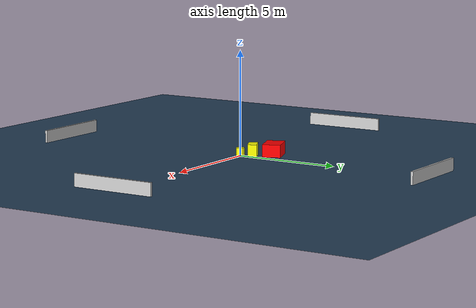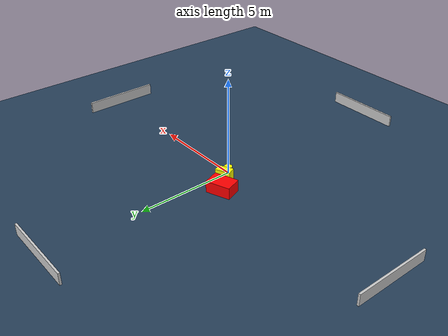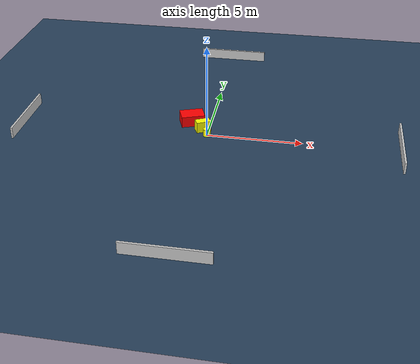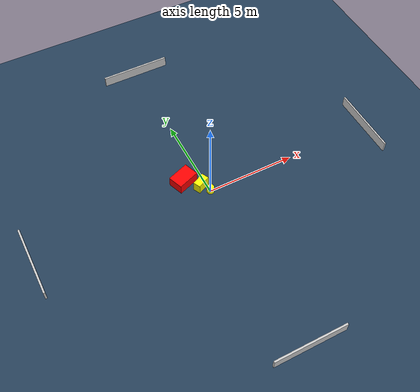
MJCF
<?xml version="1.0" ?>
<mujoco model="generated_environment">
  <option timestep="0.01" integrator="RK4" cone="elliptic"/>
  <default>
    <geom density="1"/>
  </default>
  <asset>
    <texture builtin="gradient" height="3072" name="skybox" rgb1="0.3 0.5 0.7" rgb2="0 0 0" type="skybox" width="512"/>
    <texture builtin="checker" height="300" name="groundplane" rgb1="0.2 0.3 0.4" rgb2="0.1 0.2 0.3" type="2d" width="300"/>
    <material name="groundplane" reflectance="0.2" texrepeat="5 5" texture="groundplane"/>
  </asset>
  <worldbody>
    <light dir="0 0 -1" directional="true" pos="0 0 1.5"/>
    <geom condim="3" friction="0.5 0.005 0.001" material="groundplane" name="floor" pos="0 0 0" size="0 0 0.05" type="plane"/>
    <body name="walls">
      <geom name="wall_1" condim="4" pos="-10.0 0.0 0.3" rgba="0.800000011920929 0.800000011920929 0.800000011920929 1.0" size="0.05 2.0 0.3" type="box"/>
      <geom name="wall_2" condim="4" pos="10.0 0.0 0.3" rgba="0.800000011920929 0.800000011920929 0.800000011920929 1.0" size="0.05 2.0 0.3" type="box"/>
      <geom name="wall_3" condim="4" pos="0.0 -10.0 0.3" rgba="0.800000011920929 0.800000011920929 0.800000011920929 1.0" size="2.0 0.05 0.3" type="box"/>
      <geom name="wall_4" condim="4" pos="0.0 10.0 0.3" rgba="0.800000011920929 0.800000011920929 0.800000011920929 1.0" size="2.0 0.05 0.3" type="box"/>
    </body>
    <body name="robot">
      <joint name="joint_x" type="slide" pos="0 0 0" axis="1 0 0"/>
      <joint name="joint_y" type="slide" pos="0 0 0" axis="0 1 0"/>
      <geom name="robot" type="cylinder" pos="0.0 0.0 0.2" size="0.2 0.2 0.0" mass="5.0" friction="1.0 0.005 0.0001" condim="4" rgba="1.0 1.0 0.0 1.0"/>
    </body>
    <body name="obstacle_1_movable">
      <geom name="obstacle_1_movable" condim="4" pos="-0.3108767889543485 0.4996176422011478 0.3" euler="0 0 296.0936429437438" friction="0.0 0.005 0.001" rgba="1.0 1.0 0.0 1.0" size="0.21149719594754784 0.3867008099335476 0.3" type="box" mass="0.1"/>
      <joint type="free"/>
    </body>
    <body name="obstacle_2_static">
      <geom name="obstacle_2_static" condim="4" pos="-1.0244172332128532 1.2184865121451536 0.3" euler="0 0 200.28994031735306" friction="0.0 0.005 0.001" rgba="1.0 0.0 0.0 1.0" size="0.6298844602579619 0.42994024756665855 0.3" type="box"/>
    </body>
  </worldbody>
  <actuator>
    <motor name="actuator_x" joint="joint_x" gear="1" ctrlrange="-1 1"/>
    <motor name="actuator_y" joint="joint_y" gear="1" ctrlrange="-1 1"/>
  </actuator>
</mujoco>
